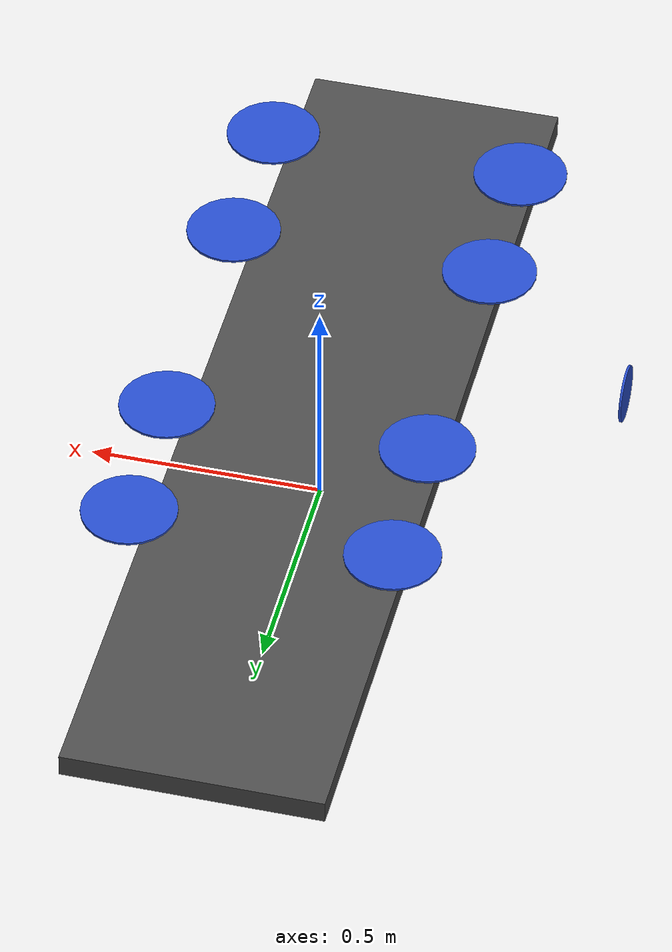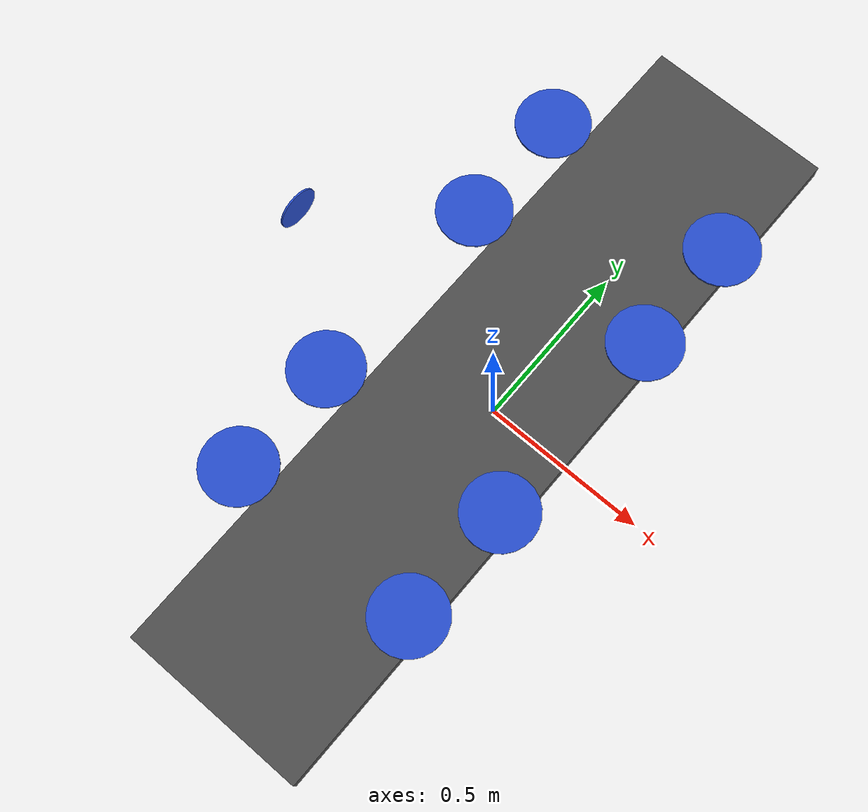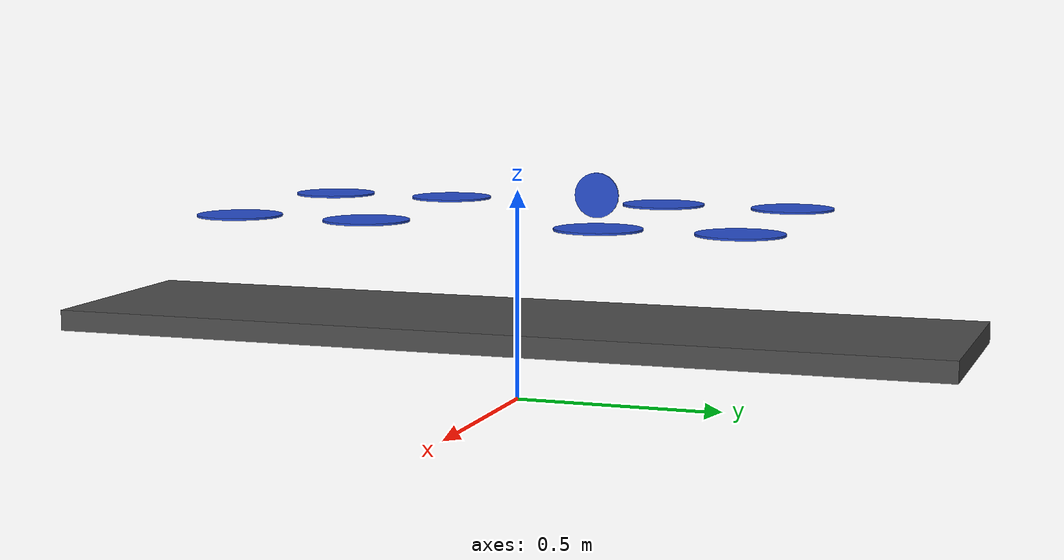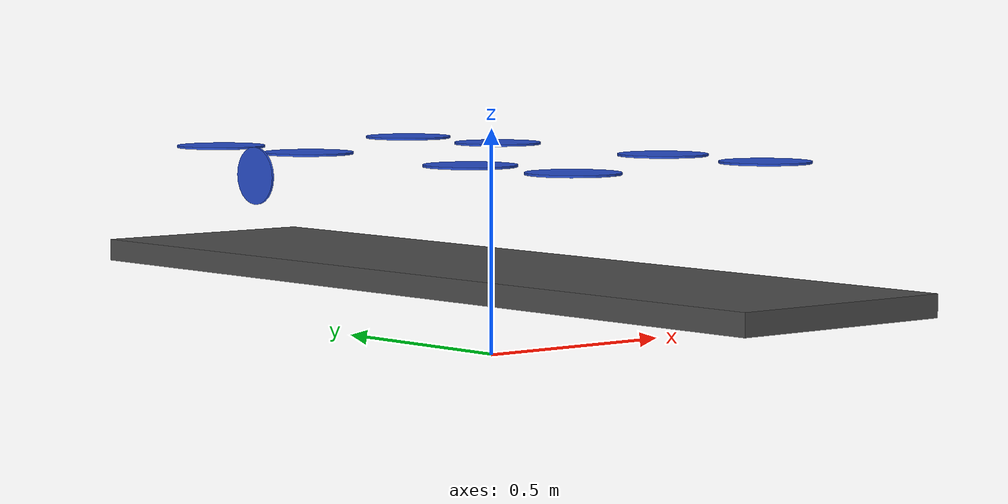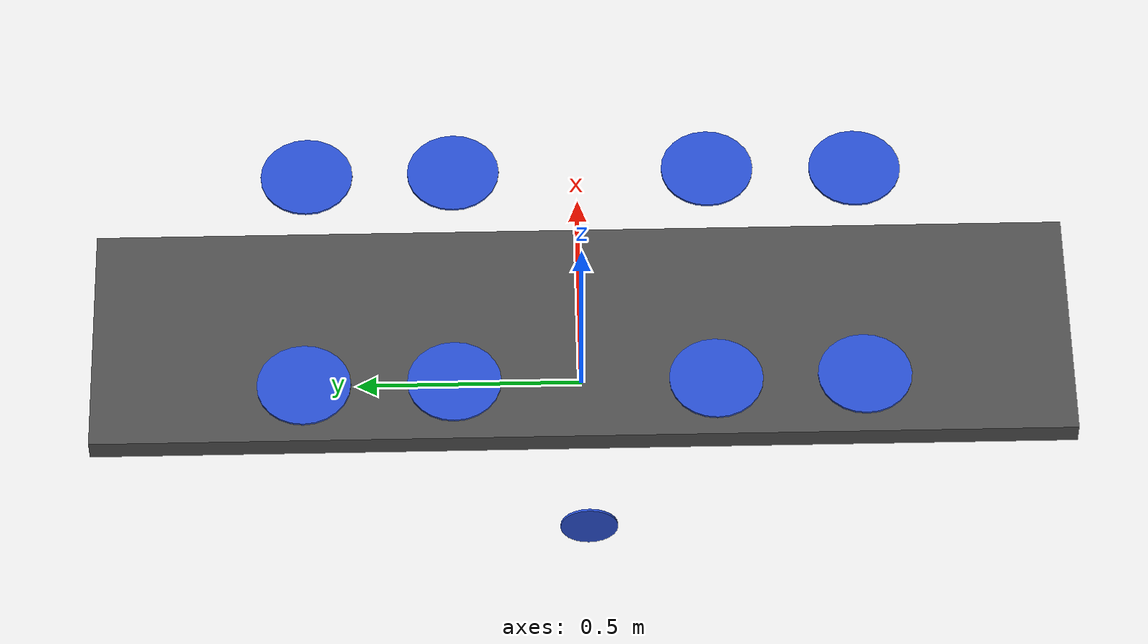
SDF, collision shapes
<?xml version="1.0"?> <!-- comment syntax -->
<sdf version='1.5'>
  <model name='leap_vtol_mk2'>
    <pose>0 0 0.246 0 0 0</pose>

    <link name='base_link'>
      <pose>0 0 0 0 0 0</pose>
      <inertial>
        <pose>0 0 0 0 0 0</pose>
        <mass>5</mass>
        <inertia>
          <ixx>0.477708333333</ixx>
          <ixy>0</ixy>
          <ixz>0</ixz>
          <iyy>0.341666666667</iyy>
          <iyz>0</iyz>
          <izz>0.811041666667</izz>
        </inertia>
      </inertial>
      <collision name='base_link_collision'>
        <pose>0 0 -0.07 0 0 0</pose>
        <geometry>
          <box>
            <size>0.55 2.144 0.05</size>
          </box>
        </geometry>
        <surface>
          <contact>
            <ode>
              <kp>100000</kp>
              <kd>1.0</kd>
              <max_vel>0.1</max_vel>
              <min_depth>0.001</min_depth>
            </ode>
          </contact>
          <friction>
            <ode/>
          </friction>
        </surface>
      </collision>
      <visual name='base_link_visual'>
        <pose>-0.7 -0.790 -0.1 1.5707963268 0 -4.712385</pose>
        <geometry>
          <mesh>
            <scale>0.001 0.001 0.001</scale>
            <uri>model://leap_vtol_mk2/meshes/leap_vtol.dae</uri>
          </mesh>
        </geometry>
        <material>
          <script>
            <name>Gazebo/DarkGrey</name>
            <uri>__default__</uri>
          </script>
        </material>
      </visual>
      <gravity>1</gravity>
      <velocity_decay/>
      <self_collide>0</self_collide>
    </link>

    <link name='leap_vtol_mk2/imu_link'>
      <pose>0 0 0 0 0 0</pose>
      <inertial>
        <pose>0 0 0 0 0 0</pose>
        <mass>0.015</mass>
        <inertia>
          <ixx>1e-05</ixx>
          <ixy>0</ixy>
          <ixz>0</ixz>
          <iyy>1e-05</iyy>
          <iyz>0</iyz>
          <izz>1e-05</izz>
        </inertia>
      </inertial>
    </link>
    <joint name='leap_vtol_mk2/imu_joint' type='revolute'>
      <child>leap_vtol_mk2/imu_link</child>
      <parent>base_link</parent>
      <axis>
        <xyz>1 0 0</xyz>
        <limit>
          <lower>0</lower>
          <upper>0</upper>
          <effort>0</effort>
          <velocity>0</velocity>
        </limit>
        <dynamics>
          <spring_reference>0</spring_reference>
          <spring_stiffness>0</spring_stiffness>
        </dynamics>
        <use_parent_model_frame>1</use_parent_model_frame>
      </axis>
    </joint>

    <link name='rotor_0'>
      <pose>0.256 -0.278 0.2 0 0 0</pose>
      <inertial>
        <pose>0 0 0 0 0 0</pose>
        <mass>0.005</mass>
        <inertia>
          <ixx>9.75e-07</ixx>
          <ixy>0</ixy>
          <ixz>0</ixz>
          <iyy>0.000166704</iyy>
          <iyz>0</iyz>
          <izz>0.000167604</izz>
        </inertia>
      </inertial>
      <collision name='rotor_0_collision'>
        <pose>0 0 0 0 0 0</pose>
        <geometry>
          <cylinder>
            <length>0.005</length>
            <radius>0.1</radius>
          </cylinder>
        </geometry>
        <surface>
          <contact>
            <ode/>
          </contact>
          <friction>
            <ode/>
          </friction>
        </surface>
      </collision>
      <visual name='rotor_0_visual'>
        <pose>0 0 0 0 0 0</pose>
        <geometry>
          <mesh>
            <scale>1 1 1</scale>
            <uri>model://leap_vtol_mk2/meshes/iris_prop_cw.dae</uri>
          </mesh>
        </geometry>
        <material>
          <script>
            <name>Gazebo/Blue</name>
            <uri>__default__</uri>
          </script>
        </material>
      </visual>
      <gravity>1</gravity>
      <velocity_decay/>
      <self_collide>0</self_collide>
    </link>
    <joint name='rotor_0_joint' type='revolute'>
      <child>rotor_0</child>
      <parent>base_link</parent>
      <axis>
        <xyz>0 0 1</xyz>
        <limit>
          <lower>-1e+16</lower>
          <upper>1e+16</upper>
        </limit>
        <dynamics>
          <spring_reference>0</spring_reference>
          <spring_stiffness>0</spring_stiffness>
        </dynamics>
        <use_parent_model_frame>1</use_parent_model_frame>
      </axis>
    </joint>

    <link name='rotor_1'>
      <pose>0.256 0.276 0.2 0 0 0</pose>
      <inertial>
        <pose>0 0 0 0 0 0</pose>
        <mass>0.005</mass>
        <inertia>
          <ixx>9.75e-07</ixx>
          <ixy>0</ixy>
          <ixz>0</ixz>
          <iyy>0.000166704</iyy>
          <iyz>0</iyz>
          <izz>0.000167604</izz>
        </inertia>
      </inertial>
      <collision name='rotor_1_collision'>
        <pose>0 0 0 0 0 0</pose>
        <geometry>
          <cylinder>
            <length>0.005</length>
            <radius>0.1</radius>
          </cylinder>
        </geometry>
        <surface>
          <contact>
            <ode/>
          </contact>
          <friction>
            <ode/>
          </friction>
        </surface>
      </collision>
      <visual name='rotor_1_visual'>
        <pose>0 0 0 0 0 0</pose>
        <geometry>
          <mesh>
            <scale>1 1 1</scale>
            <uri>model://leap_vtol_mk2/meshes/iris_prop_ccw.dae</uri>
          </mesh>
        </geometry>
        <material>
          <script>
            <name>Gazebo/Blue</name>
            <uri>__default__</uri>
          </script>
        </material>
      </visual>
      <gravity>1</gravity>
      <velocity_decay/>
      <self_collide>0</self_collide>
    </link>
    <joint name='rotor_1_joint' type='revolute'>
      <child>rotor_1</child>
      <parent>base_link</parent>
      <axis>
        <xyz>0 0 1</xyz>
        <limit>
          <lower>-1e+16</lower>
          <upper>1e+16</upper>
        </limit>
        <dynamics>
          <spring_reference>0</spring_reference>
          <spring_stiffness>0</spring_stiffness>
        </dynamics>
        <use_parent_model_frame>1</use_parent_model_frame>
      </axis>
    </joint>

    <link name='rotor_2'>
      <pose>-0.295 0.276 0.2 0 0 0</pose>
      <inertial>
        <pose>0 0 0 0 0 0</pose>
        <mass>0.005</mass>
        <inertia>
          <ixx>9.75e-07</ixx>
          <ixy>0</ixy>
          <ixz>0</ixz>
          <iyy>0.000166704</iyy>
          <iyz>0</iyz>
          <izz>0.000167604</izz>
        </inertia>
      </inertial>
      <collision name='rotor_2_collision'>
        <pose>0 0 0 0 0 0</pose>
        <geometry>
          <cylinder>
            <length>0.005</length>
            <radius>0.1</radius>
          </cylinder>
        </geometry>
        <surface>
          <contact>
            <ode/>
          </contact>
          <friction>
            <ode/>
          </friction>
        </surface>
      </collision>
      <visual name='rotor_2_visual'>
        <pose>0 0 0 0 0 0</pose>
        <geometry>
          <mesh>
            <scale>1 1 1</scale>
            <uri>model://leap_vtol_mk2/meshes/iris_prop_ccw.dae</uri>
          </mesh>
        </geometry>
        <material>
          <script>
            <name>Gazebo/Blue</name>
            <uri>__default__</uri>
          </script>
        </material>
      </visual>
      <gravity>1</gravity>
      <velocity_decay/>
      <self_collide>0</self_collide>
    </link>
    <joint name='rotor_2_joint' type='revolute'>
      <child>rotor_2</child>
      <parent>base_link</parent>
      <axis>
        <xyz>0 0 1</xyz>
        <limit>
          <lower>-1e+16</lower>
          <upper>1e+16</upper>
        </limit>
        <dynamics>
          <spring_reference>0</spring_reference>
          <spring_stiffness>0</spring_stiffness>
        </dynamics>
        <use_parent_model_frame>1</use_parent_model_frame>
      </axis>
    </joint>

    <link name='rotor_3'>
      <pose>-0.298 -0.279 0.2 0 0 0</pose>
      <inertial>
        <pose>0 0 0 0 0 0</pose>
        <mass>0.005</mass>
        <inertia>
          <ixx>9.75e-07</ixx>
          <ixy>0</ixy>
          <ixz>0</ixz>
          <iyy>0.000166704</iyy>
          <iyz>0</iyz>
          <izz>0.000167604</izz>
        </inertia>
      </inertial>
      <collision name='rotor_3_collision'>
        <pose>0 0 0 0 0 0</pose>
        <geometry>
          <cylinder>
            <length>0.005</length>
            <radius>0.1</radius>
          </cylinder>
        </geometry>
        <surface>
          <contact>
            <ode/>
          </contact>
          <friction>
            <ode/>
          </friction>
        </surface>
      </collision>
      <visual name='rotor_3_visual'>
        <pose>0 0 0 0 0 0</pose>
        <geometry>
          <mesh>
            <scale>1 1 1</scale>
            <uri>model://leap_vtol_mk2/meshes/iris_prop_cw.dae</uri>
          </mesh>
        </geometry>
        <material>
          <script>
            <name>Gazebo/Blue</name>
            <uri>__default__</uri>
          </script>
        </material>
      </visual>
      <gravity>1</gravity>
      <velocity_decay/>
      <self_collide>0</self_collide>
    </link>
    <joint name='rotor_3_joint' type='revolute'>
      <child>rotor_3</child>
      <parent>base_link</parent>
      <axis>
        <xyz>0 0 1</xyz>
        <limit>
          <lower>-1e+16</lower>
          <upper>1e+16</upper>
        </limit>
        <dynamics>
          <spring_reference>0</spring_reference>
          <spring_stiffness>0</spring_stiffness>
        </dynamics>
        <use_parent_model_frame>1</use_parent_model_frame>
      </axis>
    </joint>

    <link name='rotor_4'>
      <pose>0.251 0.595 0.2 0 0 0</pose>
      <inertial>
        <pose>0 0 0 0 0 0</pose>
        <mass>0.005</mass>
        <inertia>
          <ixx>9.75e-07</ixx>
          <ixy>0</ixy>
          <ixz>0</ixz>
          <iyy>0.000166704</iyy>
          <iyz>0</iyz>
          <izz>0.000167604</izz>
        </inertia>
      </inertial>
      <collision name='rotor_4_collision'>
        <pose>0 0 0 0 0 0</pose>
        <geometry>
          <cylinder>
            <length>0.005</length>
            <radius>0.1</radius>
          </cylinder>
        </geometry>
        <surface>
          <contact>
            <ode/>
          </contact>
          <friction>
            <ode/>
          </friction>
        </surface>
      </collision>
      <visual name='rotor_4_visual'>
        <pose>0 0 0 0 0 0</pose>
        <geometry>
          <mesh>
            <scale>1 1 1</scale>
            <uri>model://leap_vtol_mk2/meshes/iris_prop_ccw.dae</uri>
          </mesh>
        </geometry>
        <material>
          <script>
            <name>Gazebo/Blue</name>
            <uri>__default__</uri>
          </script>
        </material>
      </visual>
      <gravity>1</gravity>
      <velocity_decay/>
      <self_collide>0</self_collide>
    </link>
    <joint name='rotor_4_joint' type='revolute'>
      <child>rotor_4</child>
      <parent>base_link</parent>
      <axis>
        <xyz>0 0 1</xyz>
        <limit>
          <lower>-1e+16</lower>
          <upper>1e+16</upper>
        </limit>
        <dynamics>
          <spring_reference>0</spring_reference>
          <spring_stiffness>0</spring_stiffness>
        </dynamics>
        <use_parent_model_frame>1</use_parent_model_frame>
      </axis>
    </joint>

    <link name='rotor_5'>
      <pose>0.251 -0.6 0.2 0 0 0</pose>
      <inertial>
        <pose>0 0 0 0 0 0</pose>
        <mass>0.005</mass>
        <inertia>
          <ixx>9.75e-07</ixx>
          <ixy>0</ixy>
          <ixz>0</ixz>
          <iyy>0.000166704</iyy>
          <iyz>0</iyz>
          <izz>0.000167604</izz>
        </inertia>
      </inertial>
      <collision name='rotor_5_collision'>
        <pose>0 0 0 0 0 0</pose>
        <geometry>
          <cylinder>
            <length>0.005</length>
            <radius>0.1</radius>
          </cylinder>
        </geometry>
        <surface>
          <contact>
            <ode/>
          </contact>
          <friction>
            <ode/>
          </friction>
        </surface>
      </collision>
      <visual name='rotor_5_visual'>
        <pose>0 0 0 0 0 0</pose>
        <geometry>
          <mesh>
            <scale>1 1 1</scale>
            <uri>model://leap_vtol_mk2/meshes/iris_prop_cw.dae</uri>
          </mesh>
        </geometry>
        <material>
          <script>
            <name>Gazebo/Blue</name>
            <uri>__default__</uri>
          </script>
        </material>
      </visual>
      <gravity>1</gravity>
      <velocity_decay/>
      <self_collide>0</self_collide>
    </link>
    <joint name='rotor_5_joint' type='revolute'>
      <child>rotor_5</child>
      <parent>base_link</parent>
      <axis>
        <xyz>0 0 1</xyz>
        <limit>
          <lower>-1e+16</lower>
          <upper>1e+16</upper>
        </limit>
        <dynamics>
          <spring_reference>0</spring_reference>
          <spring_stiffness>0</spring_stiffness>
        </dynamics>
        <use_parent_model_frame>1</use_parent_model_frame>
      </axis>
    </joint>

    <link name='rotor_6'>
      <pose>-0.293 -0.595 0.2 0 0 0</pose>
      <inertial>
        <pose>0 0 0 0 0 0</pose>
        <mass>0.005</mass>
        <inertia>
          <ixx>9.75e-07</ixx>
          <ixy>0</ixy>
          <ixz>0</ixz>
          <iyy>0.000166704</iyy>
          <iyz>0</iyz>
          <izz>0.000167604</izz>
        </inertia>
      </inertial>
      <collision name='rotor_6_collision'>
        <pose>0 0 0 0 0 0</pose>
        <geometry>
          <cylinder>
            <length>0.005</length>
            <radius>0.1</radius>
          </cylinder>
        </geometry>
        <surface>
          <contact>
            <ode/>
          </contact>
          <friction>
            <ode/>
          </friction>
        </surface>
      </collision>
      <visual name='rotor_6_visual'>
        <pose>0 0 0 0 0 0</pose>
        <geometry>
          <mesh>
            <scale>1 1 1</scale>
            <uri>model://leap_vtol_mk2/meshes/iris_prop_ccw.dae</uri>
          </mesh>
        </geometry>
        <material>
          <script>
            <name>Gazebo/Blue</name>
            <uri>__default__</uri>
          </script>
        </material>
      </visual>
      <gravity>1</gravity>
      <velocity_decay/>
      <self_collide>0</self_collide>
    </link>
    <joint name='rotor_6_joint' type='revolute'>
      <child>rotor_6</child>
      <parent>base_link</parent>
      <axis>
        <xyz>0 0 1</xyz>
        <limit>
          <lower>-1e+16</lower>
          <upper>1e+16</upper>
        </limit>
        <dynamics>
          <spring_reference>0</spring_reference>
          <spring_stiffness>0</spring_stiffness>
        </dynamics>
        <use_parent_model_frame>1</use_parent_model_frame>
      </axis>
    </joint>

    <link name='rotor_7'>
      <pose>-0.298 0.595 0.2 0 0 0</pose>
      <inertial>
        <pose>0 0 0 0 0 0</pose>
        <mass>0.005</mass>
        <inertia>
          <ixx>9.75e-07</ixx>
          <ixy>0</ixy>
          <ixz>0</ixz>
          <iyy>0.000166704</iyy>
          <iyz>0</iyz>
          <izz>0.000167604</izz>
        </inertia>
      </inertial>
      <collision name='rotor_7_collision'>
        <pose>0 0 0 0 0 0</pose>
        <geometry>
          <cylinder>
            <length>0.005</length>
            <radius>0.1</radius>
          </cylinder>
        </geometry>
        <surface>
          <contact>
            <ode/>
          </contact>
          <friction>
            <ode/>
          </friction>
        </surface>
      </collision>
      <visual name='rotor_7_visual'>
        <pose>0 0 0 0 0 0</pose>
        <geometry>
          <mesh>
            <scale>1 1 1</scale>
            <uri>model://leap_vtol_mk2/meshes/iris_prop_cw.dae</uri>
          </mesh>
        </geometry>
        <material>
          <script>
            <name>Gazebo/Blue</name>
            <uri>__default__</uri>
          </script>
        </material>
      </visual>
      <gravity>1</gravity>
      <velocity_decay/>
      <self_collide>0</self_collide>
    </link>
    <joint name='rotor_7_joint' type='revolute'>
      <child>rotor_7</child>
      <parent>base_link</parent>
      <axis>
        <xyz>0 0 1</xyz>
        <limit>
          <lower>-1e+16</lower>
          <upper>1e+16</upper>
        </limit>
        <dynamics>
          <spring_reference>0</spring_reference>
          <spring_stiffness>0</spring_stiffness>
        </dynamics>
        <use_parent_model_frame>1</use_parent_model_frame>
      </axis>
    </joint>

    <link name='rotor_pusher'>
      <pose>-0.610 -0.0022 0.18 0 1.57 0</pose>
      <inertial>
        <pose>0 0 0 0 0 0</pose>
        <mass>0.005</mass>
        <inertia>
          <ixx>9.75e-07</ixx>
          <ixy>0</ixy>
          <ixz>0</ixz>
          <iyy>0.000166704</iyy>
          <iyz>0</iyz>
          <izz>0.000167604</izz>
        </inertia>
      </inertial>
      <collision name='rotor_pusher_collision'>
        <pose>0.0 0 -0.04 0 0 0</pose>
        <geometry>
          <cylinder>
            <length>0.005</length>
            <radius>0.06</radius>
          </cylinder>
        </geometry>
        <surface>
          <contact>
            <ode/>
          </contact>
          <friction>
            <ode/>
          </friction>
        </surface>
      </collision>
      <visual name='rotor_pusher_visual'>
        <pose>0 0 -0.04 0 0 0</pose>
        <geometry>
          <mesh>
            <scale>0.8 0.8 0.8</scale>
            <uri>model://leap_vtol_mk2/meshes/iris_prop_ccw.dae</uri>
          </mesh>
        </geometry>
        <material>
          <script>
            <name>Gazebo/Blue</name>
            <uri>__default__</uri>
          </script>
        </material>
      </visual>
      <gravity>1</gravity>
      <velocity_decay/>
      <self_collide>0</self_collide>
    </link>
    <joint name='rotor_pusher_joint' type='revolute'>
      <child>rotor_pusher</child>
      <parent>base_link</parent>
      <axis>
        <xyz>1 0 0</xyz>
        <limit>
          <lower>-1e+16</lower>
          <upper>1e+16</upper>
        </limit>
        <dynamics>
          <spring_reference>0</spring_reference>
          <spring_stiffness>0</spring_stiffness>
        </dynamics>
        <use_parent_model_frame>1</use_parent_model_frame>
      </axis>
    </joint>

    <plugin name='front_right_root_motor_model' filename='libgazebo_motor_model.so'>
      <robotNamespace></robotNamespace>
      <jointName>rotor_1_joint</jointName>
      <linkName>rotor_1</linkName>
      <turningDirection>ccw</turningDirection>
      <timeConstantUp>0.0125</timeConstantUp>
      <timeConstantDown>0.025</timeConstantDown>
      <maxRotVelocity>1500</maxRotVelocity>
      <motorConstant>8.54858e-06</motorConstant>
      <momentConstant>0.06</momentConstant>
      <commandSubTopic>/gazebo/command/motor_speed</commandSubTopic>
      <motorNumber>1</motorNumber>
      <rotorDragCoefficient>0.000806428</rotorDragCoefficient>
      <rollingMomentCoefficient>1e-06</rollingMomentCoefficient>
      <motorSpeedPubTopic>/motor_speed/1</motorSpeedPubTopic>
      <rotorVelocitySlowdownSim>20</rotorVelocitySlowdownSim>
    </plugin>
    <plugin name='back_right_root_motor_model' filename='libgazebo_motor_model.so'>
      <robotNamespace></robotNamespace>
      <jointName>rotor_2_joint</jointName>
      <linkName>rotor_2</linkName>
      <turningDirection>cw</turningDirection>
      <timeConstantUp>0.0125</timeConstantUp>
      <timeConstantDown>0.025</timeConstantDown>
      <maxRotVelocity>1500</maxRotVelocity>
      <motorConstant>8.54858e-06</motorConstant>
      <momentConstant>0.06</momentConstant>
      <commandSubTopic>/gazebo/command/motor_speed</commandSubTopic>
      <motorNumber>2</motorNumber>
      <rotorDragCoefficient>0.000806428</rotorDragCoefficient>
      <rollingMomentCoefficient>1e-06</rollingMomentCoefficient>
      <motorSpeedPubTopic>/motor_speed/2</motorSpeedPubTopic>
      <rotorVelocitySlowdownSim>20</rotorVelocitySlowdownSim>
    </plugin>
    <plugin name='front_right_center_motor_model' filename='libgazebo_motor_model.so'>
      <robotNamespace></robotNamespace>
      <jointName>rotor_5_joint</jointName>
      <linkName>rotor_5</linkName>
      <turningDirection>cw</turningDirection>
      <timeConstantUp>0.0125</timeConstantUp>
      <timeConstantDown>0.025</timeConstantDown>
      <maxRotVelocity>1500</maxRotVelocity>
      <motorConstant>8.54858e-06</motorConstant>
      <momentConstant>0.06</momentConstant>
      <commandSubTopic>/gazebo/command/motor_speed</commandSubTopic>
      <motorNumber>5</motorNumber>
      <rotorDragCoefficient>0.000806428</rotorDragCoefficient>
      <rollingMomentCoefficient>1e-06</rollingMomentCoefficient>
      <motorSpeedPubTopic>/motor_speed/5</motorSpeedPubTopic>
      <rotorVelocitySlowdownSim>20</rotorVelocitySlowdownSim>
    </plugin>
    <plugin name='back_right_center_motor_model' filename='libgazebo_motor_model.so'>
      <robotNamespace></robotNamespace>
      <jointName>rotor_6_joint</jointName>
      <linkName>rotor_6</linkName>
      <turningDirection>ccw</turningDirection>
      <timeConstantUp>0.0125</timeConstantUp>
      <timeConstantDown>0.025</timeConstantDown>
      <maxRotVelocity>1500</maxRotVelocity>
      <motorConstant>8.54858e-06</motorConstant>
      <momentConstant>0.06</momentConstant>
      <commandSubTopic>/gazebo/command/motor_speed</commandSubTopic>
      <motorNumber>6</motorNumber>
      <rotorDragCoefficient>0.000806428</rotorDragCoefficient>
      <rollingMomentCoefficient>1e-06</rollingMomentCoefficient>
      <motorSpeedPubTopic>/motor_speed/6</motorSpeedPubTopic>
      <rotorVelocitySlowdownSim>20</rotorVelocitySlowdownSim>
    </plugin>

    <plugin name='front_left_root_motor_model' filename='libgazebo_motor_model.so'>
      <robotNamespace></robotNamespace>
      <jointName>rotor_0_joint</jointName>
      <linkName>rotor_0</linkName>
      <turningDirection>cw</turningDirection>
      <timeConstantUp>0.0125</timeConstantUp>
      <timeConstantDown>0.025</timeConstantDown>
      <maxRotVelocity>1500</maxRotVelocity>
      <motorConstant>8.54858e-06</motorConstant>
      <momentConstant>0.06</momentConstant>
      <commandSubTopic>/gazebo/command/motor_speed</commandSubTopic>
      <motorNumber>0</motorNumber>
      <rotorDragCoefficient>0.000806428</rotorDragCoefficient>
      <rollingMomentCoefficient>1e-06</rollingMomentCoefficient>
      <motorSpeedPubTopic>/motor_speed/0</motorSpeedPubTopic>
      <rotorVelocitySlowdownSim>20</rotorVelocitySlowdownSim>
    </plugin>
    <plugin name='back_left_root_motor_model' filename='libgazebo_motor_model.so'>
      <robotNamespace></robotNamespace>
      <jointName>rotor_3_joint</jointName>
      <linkName>rotor_3</linkName>
      <turningDirection>ccw</turningDirection>
      <timeConstantUp>0.0125</timeConstantUp>
      <timeConstantDown>0.025</timeConstantDown>
      <maxRotVelocity>1500</maxRotVelocity>
      <motorConstant>8.54858e-06</motorConstant>
      <momentConstant>0.06</momentConstant>
      <commandSubTopic>/gazebo/command/motor_speed</commandSubTopic>
      <motorNumber>3</motorNumber>
      <rotorDragCoefficient>0.000806428</rotorDragCoefficient>
      <rollingMomentCoefficient>1e-06</rollingMomentCoefficient>
      <motorSpeedPubTopic>/motor_speed/3</motorSpeedPubTopic>
      <rotorVelocitySlowdownSim>20</rotorVelocitySlowdownSim>
    </plugin>
    <plugin name='front_left_center_motor_model' filename='libgazebo_motor_model.so'>
      <robotNamespace></robotNamespace>
      <jointName>rotor_4_joint</jointName>
      <linkName>rotor_4</linkName>
      <turningDirection>ccw</turningDirection>
      <timeConstantUp>0.0125</timeConstantUp>
      <timeConstantDown>0.025</timeConstantDown>
      <maxRotVelocity>1500</maxRotVelocity>
      <motorConstant>8.54858e-06</motorConstant>
      <momentConstant>0.06</momentConstant>
      <commandSubTopic>/gazebo/command/motor_speed</commandSubTopic>
      <motorNumber>4</motorNumber>
      <rotorDragCoefficient>0.000806428</rotorDragCoefficient>
      <rollingMomentCoefficient>1e-06</rollingMomentCoefficient>
      <motorSpeedPubTopic>/motor_speed/4</motorSpeedPubTopic>
      <rotorVelocitySlowdownSim>20</rotorVelocitySlowdownSim>
    </plugin>
    <plugin name='back_left_center_motor_model' filename='libgazebo_motor_model.so'>
      <robotNamespace></robotNamespace>
      <jointName>rotor_7_joint</jointName>
      <linkName>rotor_7</linkName>
      <turningDirection>cw</turningDirection>
      <timeConstantUp>0.0125</timeConstantUp>
      <timeConstantDown>0.025</timeConstantDown>
      <maxRotVelocity>1500</maxRotVelocity>
      <motorConstant>8.54858e-06</motorConstant>
      <momentConstant>0.06</momentConstant>
      <commandSubTopic>/gazebo/command/motor_speed</commandSubTopic>
      <motorNumber>7</motorNumber>
      <rotorDragCoefficient>0.000806428</rotorDragCoefficient>
      <rollingMomentCoefficient>1e-06</rollingMomentCoefficient>
      <motorSpeedPubTopic>/motor_speed/7</motorSpeedPubTopic>
      <rotorVelocitySlowdownSim>20</rotorVelocitySlowdownSim>
    </plugin>

    <plugin name='pusher_motor_model' filename='libgazebo_motor_model.so'>
      <robotNamespace></robotNamespace>
      <jointName>rotor_pusher_joint</jointName>
      <linkName>rotor_pusher</linkName>
      <turningDirection>ccw</turningDirection>
      <timeConstantUp>0.0125</timeConstantUp>
      <timeConstantDown>0.025</timeConstantDown>
      <maxRotVelocity>3500</maxRotVelocity>
      <motorConstant>8.54858e-06</motorConstant>
      <momentConstant>0.01</momentConstant>
      <commandSubTopic>/gazebo/command/motor_speed</commandSubTopic>
      <motorNumber>12</motorNumber>
      <rotorDragCoefficient>8.06428e-05</rotorDragCoefficient>
      <rollingMomentCoefficient>1e-06</rollingMomentCoefficient>
      <motorSpeedPubTopic>/motor_speed/12</motorSpeedPubTopic>
      <rotorVelocitySlowdownSim>20</rotorVelocitySlowdownSim>
    </plugin>

    <plugin name='left_wing' filename='libLiftDragPlugin.so'>
      <a0>0.05984281113</a0>
      <cla>4.752798721</cla>
      <cda>0.6417112299</cda>
      <cma>-1.8</cma>
      <alpha_stall>0.3391428111</alpha_stall>
      <cla_stall>-3.85</cla_stall>
      <cda_stall>-0.9233984055</cda_stall>
      <cma_stall>0</cma_stall>
      <cp>-0.05 0.3 0.05</cp>
      <area>0.50</area>
      <air_density>1.2041</air_density>
      <forward>1 0 0</forward>
      <upward>0 0 1</upward>
      <link_name>base_link</link_name>
      <control_joint_name>
        left_elevon_joint
      </control_joint_name>
      <control_joint_rad_to_cl>-1.0</control_joint_rad_to_cl>
    </plugin>
    <plugin name='right_wing' filename='libLiftDragPlugin.so'>
      <a0>0.05984281113</a0>
      <cla>4.752798721</cla>
      <cda>0.6417112299</cda>
      <cma>-1.8</cma>
      <alpha_stall>0.3391428111</alpha_stall>
      <cla_stall>-3.85</cla_stall>
      <cda_stall>-0.9233984055</cda_stall>
      <cma_stall>0</cma_stall>
      <cp>-0.05 -0.3 0.05</cp>
      <area>0.50</area>
      <air_density>1.2041</air_density>
      <forward>1 0 0</forward>
      <upward>0 0 1</upward>
      <link_name>base_link</link_name>
      <control_joint_name>
        right_elevon_joint
      </control_joint_name>
      <control_joint_rad_to_cl>-1.0</control_joint_rad_to_cl>
    </plugin>

    <plugin name='gazebo_imu_plugin' filename='libgazebo_imu_plugin.so'>
      <robotNamespace></robotNamespace>
      <linkName>leap_vtol_mk2/imu_link</linkName>
      <imuTopic>/imu</imuTopic>
      <gyroscopeNoiseDensity>0.0003394</gyroscopeNoiseDensity>
      <gyroscopeRandomWalk>3.8785e-05</gyroscopeRandomWalk>
      <gyroscopeBiasCorrelationTime>1000.0</gyroscopeBiasCorrelationTime>
      <gyroscopeTurnOnBiasSigma>0.0087</gyroscopeTurnOnBiasSigma>
      <accelerometerNoiseDensity>0.004</accelerometerNoiseDensity>
      <accelerometerRandomWalk>0.006</accelerometerRandomWalk>
      <accelerometerBiasCorrelationTime>300.0</accelerometerBiasCorrelationTime>
      <accelerometerTurnOnBiasSigma>0.196</accelerometerTurnOnBiasSigma>
    </plugin>

    <plugin name='gps_plugin' filename='libgazebo_gps_plugin.so'>
        <robotNamespace></robotNamespace>
        <gpsNoise>true</gpsNoise>
    </plugin>
    <plugin name='magnetometer_plugin' filename='libgazebo_magnetometer_plugin.so'>
      <robotNamespace/>
      <pubRate>20</pubRate>
      <noiseDensity>0.0004</noiseDensity>
      <randomWalk>6.4e-06</randomWalk>
      <biasCorrelationTime>600</biasCorrelationTime>
      <magTopic>/mag</magTopic>
    </plugin>
    <plugin name='barometer_plugin' filename='libgazebo_barometer_plugin.so'>
      <robotNamespace/>
      <pubRate>10</pubRate>
      <baroTopic>/baro</baroTopic>
    </plugin>

    <plugin name='mavlink_interface' filename='libgazebo_mavlink_interface.so'>
      <robotNamespace></robotNamespace>
      <imuSubTopic>/imu</imuSubTopic>
      <gpsSubTopic>/gps</gpsSubTopic>
      <magSubTopic>/mag</magSubTopic>
      <baroSubTopic>/baro</baroSubTopic>
      <mavlink_addr>INADDR_ANY</mavlink_addr>
      <mavlink_udp_port>14560</mavlink_udp_port>
      <serialEnabled>false</serialEnabled>
      <serialDevice>/dev/ttyACM0</serialDevice>
      <baudRate>921600</baudRate>
      <qgc_addr>INADDR_ANY</qgc_addr>
      <qgc_udp_port>14550</qgc_udp_port>
      <sdk_addr>INADDR_ANY</sdk_addr>
      <sdk_udp_port>14540</sdk_udp_port>
      <hil_mode>false</hil_mode>
      <hil_state_level>false</hil_state_level>
      <enable_lockstep>true</enable_lockstep>
      <use_tcp>true</use_tcp>
      <motorSpeedCommandPubTopic>/gazebo/command/motor_speed</motorSpeedCommandPubTopic>
      <control_channels>
        <channel name="rotor0">
          <input_index>0</input_index>
          <input_offset>0</input_offset>
          <input_scaling>1500</input_scaling>
          <zero_position_disarmed>0</zero_position_disarmed>
          <zero_position_armed>0</zero_position_armed>
          <joint_control_type>velocity</joint_control_type>
          <joint_name>rotor_0_joint</joint_name>
        </channel>
        <channel name="rotor1">
          <input_index>1</input_index>
          <input_offset>0</input_offset>
          <input_scaling>1500</input_scaling>
          <zero_position_disarmed>0</zero_position_disarmed>
          <zero_position_armed>0</zero_position_armed>
          <joint_control_type>velocity</joint_control_type>
          <joint_name>rotor_1_joint</joint_name>
        </channel>
        <channel name="rotor2">
          <input_index>2</input_index>
          <input_offset>0</input_offset>
          <input_scaling>1500</input_scaling>
          <zero_position_disarmed>0</zero_position_disarmed>
          <zero_position_armed>0</zero_position_armed>
          <joint_control_type>velocity</joint_control_type>
          <joint_name>rotor_2_joint</joint_name>
        </channel>
        <channel name="rotor3">
          <input_index>3</input_index>
          <input_offset>0</input_offset>
          <input_scaling>1500</input_scaling>
          <zero_position_disarmed>0</zero_position_disarmed>
          <zero_position_armed>0</zero_position_armed>
          <joint_control_type>velocity</joint_control_type>
          <joint_name>rotor_3_joint</joint_name>
        </channel>
        <channel name="rotor4">
          <input_index>4</input_index>
          <input_offset>0</input_offset>
          <input_scaling>5500</input_scaling>
          <zero_position_disarmed>0</zero_position_disarmed>
          <zero_position_armed>0</zero_position_armed>
          <joint_control_type>velocity</joint_control_type>
          <joint_name>rotor_4_joint</joint_name>
        </channel>
        <channel name="rotor5">
          <input_index>5</input_index>
          <input_offset>0</input_offset>
          <input_scaling>1500</input_scaling>
          <zero_position_disarmed>0</zero_position_disarmed>
          <zero_position_armed>0</zero_position_armed>
          <joint_control_type>velocity</joint_control_type>
          <joint_name>rotor_5_joint</joint_name>
        </channel>
        <channel name="rotor6">
          <input_index>6</input_index>
          <input_offset>0</input_offset>
          <input_scaling>1500</input_scaling>
          <zero_position_disarmed>0</zero_position_disarmed>
          <zero_position_armed>0</zero_position_armed>
          <joint_control_type>velocity</joint_control_type>
          <joint_name>rotor_6_joint</joint_name>
        </channel>
        <channel name="rotor7">
          <input_index>7</input_index>
          <input_offset>0</input_offset>
          <input_scaling>1500</input_scaling>
          <zero_position_disarmed>0</zero_position_disarmed>
          <zero_position_armed>0</zero_position_armed>
          <joint_control_type>velocity</joint_control_type>
          <joint_name>rotor_7_joint</joint_name>
        </channel>
        <channel name="rotorpusher">
          <input_index>8</input_index>
          <input_offset>0</input_offset>
          <input_scaling>1500</input_scaling>
          <zero_position_disarmed>0</zero_position_disarmed>
          <zero_position_armed>0</zero_position_armed>
          <joint_control_type>velocity</joint_control_type>
          <joint_name>rotor_pusher_joint</joint_name>
        </channel>
      </control_channels>
    </plugin>

    <static>0</static>
  </model>
</sdf>
